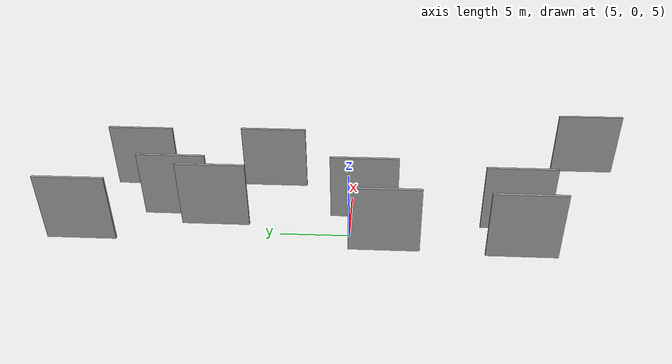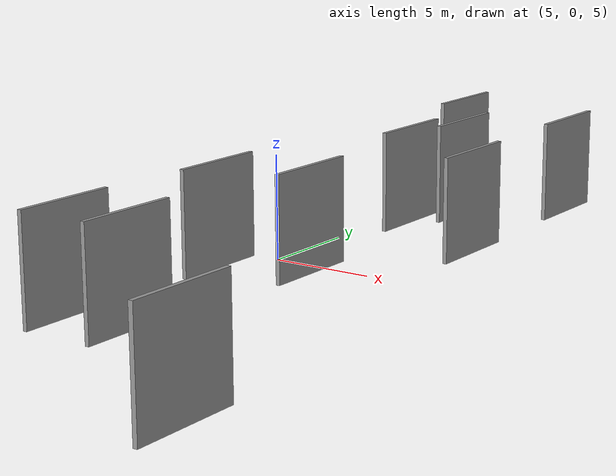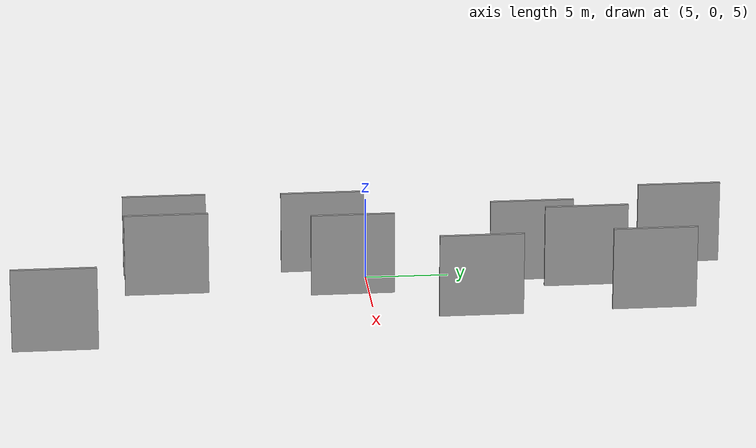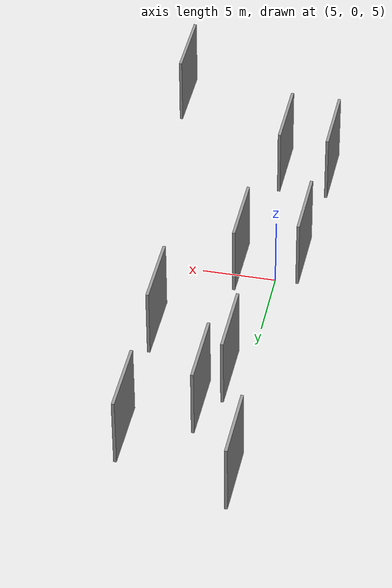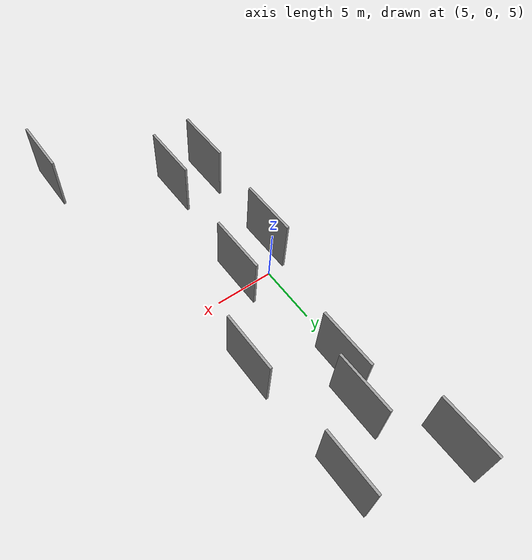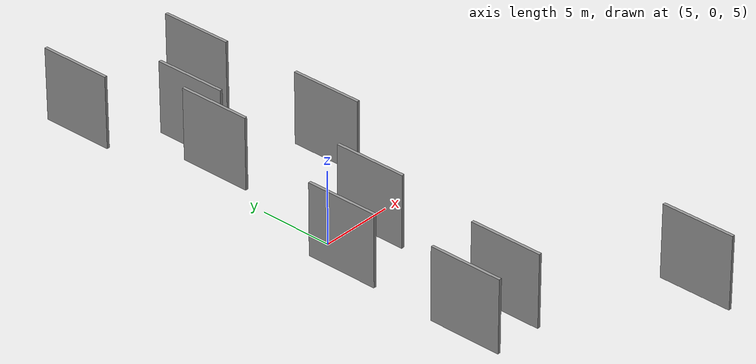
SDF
<sdf version="1.6">
 <world name="default">
  <scene>
   <sky><clouds><speed>12</speed></clouds></sky>
   <ambient>0.4 0.4 0.4 1</ambient>
   <background>0.7 0.7 0.7 1</background>
   <shadows>1</shadows>
  </scene>
  <gravity>0 0 -9.8066</gravity>
  <magnetic_field>6e-06 2.3e-05 -4.2e-05</magnetic_field>
  <physics default="0" name="default_physics" type="ode">
   <ode>
    <solver>
     <type>quick</type>
     <iters>10</iters>
     <sor>1.0</sor>
     <use_dynamic_moi_rescaling>0</use_dynamic_moi_rescaling>
    </solver>
    <constraints>
     <cfm>0</cfm>
     <erp>0.2</erp>
     <contact_max_correcting_vel>100</contact_max_correcting_vel>
     <contact_surface_layer>0.001</contact_surface_layer>
    </constraints>
   </ode>
   <max_step_size>0.004</max_step_size>
   <real_time_factor>1</real_time_factor>
   <real_time_update_rate>250</real_time_update_rate>
  </physics>
  <light name="sun" type="directional">
   <pose>0 0 10 0 0 0</pose>
   <diffuse>0.8 0.8 0.8 1</diffuse>
   <specular>0.2 0.2 0.2 1</specular>
   <attenuation>
    <range>1000</range>
    <constant>0.9</constant>
    <linear>0.01</linear>
    <quadratic>0.001</quadratic>
   </attenuation>
   <direction>-0.5 0.1 -0.9</direction>
  </light>
  <model name="grey_wall_1">
   <static>1</static>
   <pose>6.1062 9.9272 5.0 0.000000 0.000000 1.570796</pose>
   <link name="link">
    <pose>0 0 2.50 0 0 0</pose>
    <collision name="collision"><geometry><box><size>5.00 0.2 5.00</size></box></geometry></collision>
    <visual name="visual">
     <cast_shadows>0</cast_shadows>
     <geometry><box><size>5.00 0.2 5.00</size></box></geometry>
     <material>
      <script>
       <uri>model://grey_wall/materials/scripts</uri>
       <uri>model://grey_wall/materials/textures</uri>
       <name>vrc/grey_wall</name>
      </script>
     </material>
    </visual>
   </link>
  </model>
  <model name="grey_wall_2">
   <static>1</static>
   <pose>6.6142 -12.0354 5.0 0.000000 0.000000 1.570796</pose>
   <link name="link">
    <pose>0 0 2.50 0 0 0</pose>
    <collision name="collision"><geometry><box><size>5.00 0.2 5.00</size></box></geometry></collision>
    <visual name="visual">
     <cast_shadows>0</cast_shadows>
     <geometry><box><size>5.00 0.2 5.00</size></box></geometry>
     <material>
      <script>
       <uri>model://grey_wall/materials/scripts</uri>
       <uri>model://grey_wall/materials/textures</uri>
       <name>vrc/grey_wall</name>
      </script>
     </material>
    </visual>
   </link>
  </model>
  <model name="grey_wall_3">
   <static>1</static>
   <pose>15.2013 -18.9126 5.0 0.000000 0.000000 1.570796</pose>
   <link name="link">
    <pose>0 0 2.50 0 0 0</pose>
    <collision name="collision"><geometry><box><size>5.00 0.2 5.00</size></box></geometry></collision>
    <visual name="visual">
     <cast_shadows>0</cast_shadows>
     <geometry><box><size>5.00 0.2 5.00</size></box></geometry>
     <material>
      <script>
       <uri>model://grey_wall/materials/scripts</uri>
       <uri>model://grey_wall/materials/textures</uri>
       <name>vrc/grey_wall</name>
      </script>
     </material>
    </visual>
   </link>
  </model>
  <model name="grey_wall_4">
   <static>1</static>
   <pose>3.5088 -2.4803 5.0 0.000000 0.000000 1.570796</pose>
   <link name="link">
    <pose>0 0 2.50 0 0 0</pose>
    <collision name="collision"><geometry><box><size>5.00 0.2 5.00</size></box></geometry></collision>
    <visual name="visual">
     <cast_shadows>0</cast_shadows>
     <geometry><box><size>5.00 0.2 5.00</size></box></geometry>
     <material>
      <script>
       <uri>model://grey_wall/materials/scripts</uri>
       <uri>model://grey_wall/materials/textures</uri>
       <name>vrc/grey_wall</name>
      </script>
     </material>
    </visual>
   </link>
  </model>
  <model name="grey_wall_5">
   <static>1</static>
   <pose>3.9196 19.1755 5.0 0.000000 0.000000 1.570796</pose>
   <link name="link">
    <pose>0 0 2.50 0 0 0</pose>
    <collision name="collision"><geometry><box><size>5.00 0.2 5.00</size></box></geometry></collision>
    <visual name="visual">
     <cast_shadows>0</cast_shadows>
     <geometry><box><size>5.00 0.2 5.00</size></box></geometry>
     <material>
      <script>
       <uri>model://grey_wall/materials/scripts</uri>
       <uri>model://grey_wall/materials/textures</uri>
       <name>vrc/grey_wall</name>
      </script>
     </material>
    </visual>
   </link>
  </model>
  <model name="grey_wall_6">
   <static>1</static>
   <pose>11.8046 6.2531 5.0 0.000000 0.000000 1.570796</pose>
   <link name="link">
    <pose>0 0 2.50 0 0 0</pose>
    <collision name="collision"><geometry><box><size>5.00 0.2 5.00</size></box></geometry></collision>
    <visual name="visual">
     <cast_shadows>0</cast_shadows>
     <geometry><box><size>5.00 0.2 5.00</size></box></geometry>
     <material>
      <script>
       <uri>model://grey_wall/materials/scripts</uri>
       <uri>model://grey_wall/materials/textures</uri>
       <name>vrc/grey_wall</name>
      </script>
     </material>
    </visual>
   </link>
  </model>
  <model name="grey_wall_7">
   <static>1</static>
   <pose>7.5907 -0.9800 5.0 0.000000 0.000000 1.570796</pose>
   <link name="link">
    <pose>0 0 2.50 0 0 0</pose>
    <collision name="collision"><geometry><box><size>5.00 0.2 5.00</size></box></geometry></collision>
    <visual name="visual">
     <cast_shadows>0</cast_shadows>
     <geometry><box><size>5.00 0.2 5.00</size></box></geometry>
     <material>
      <script>
       <uri>model://grey_wall/materials/scripts</uri>
       <uri>model://grey_wall/materials/textures</uri>
       <name>vrc/grey_wall</name>
      </script>
     </material>
    </visual>
   </link>
  </model>
  <model name="grey_wall_8">
   <static>1</static>
   <pose>3.2274 -11.9989 5.0 0.000000 0.000000 1.570796</pose>
   <link name="link">
    <pose>0 0 2.50 0 0 0</pose>
    <collision name="collision"><geometry><box><size>5.00 0.2 5.00</size></box></geometry></collision>
    <visual name="visual">
     <cast_shadows>0</cast_shadows>
     <geometry><box><size>5.00 0.2 5.00</size></box></geometry>
     <material>
      <script>
       <uri>model://grey_wall/materials/scripts</uri>
       <uri>model://grey_wall/materials/textures</uri>
       <name>vrc/grey_wall</name>
      </script>
     </material>
    </visual>
   </link>
  </model>
  <model name="grey_wall_9">
   <static>1</static>
   <pose>7.3505 13.0649 5.0 0.000000 0.000000 1.570796</pose>
   <link name="link">
    <pose>0 0 2.50 0 0 0</pose>
    <collision name="collision"><geometry><box><size>5.00 0.2 5.00</size></box></geometry></collision>
    <visual name="visual">
     <cast_shadows>0</cast_shadows>
     <geometry><box><size>5.00 0.2 5.00</size></box></geometry>
     <material>
      <script>
       <uri>model://grey_wall/materials/scripts</uri>
       <uri>model://grey_wall/materials/textures</uri>
       <name>vrc/grey_wall</name>
      </script>
     </material>
    </visual>
   </link>
  </model>
  <model name="grey_wall_10">
   <static>1</static>
   <pose>11.5662 16.5840 5.0 0.000000 0.000000 1.570796</pose>
   <link name="link">
    <pose>0 0 2.50 0 0 0</pose>
    <collision name="collision"><geometry><box><size>5.00 0.2 5.00</size></box></geometry></collision>
    <visual name="visual">
     <cast_shadows>0</cast_shadows>
     <geometry><box><size>5.00 0.2 5.00</size></box></geometry>
     <material>
      <script>
       <uri>model://grey_wall/materials/scripts</uri>
       <uri>model://grey_wall/materials/textures</uri>
       <name>vrc/grey_wall</name>
      </script>
     </material>
    </visual>
   </link>
  </model>
 </world>
</sdf>
